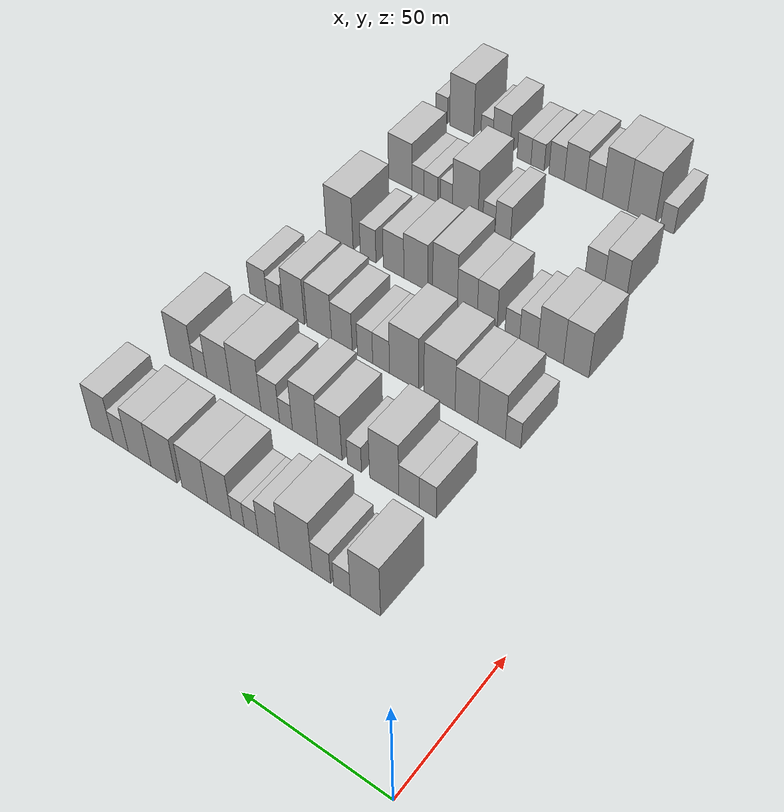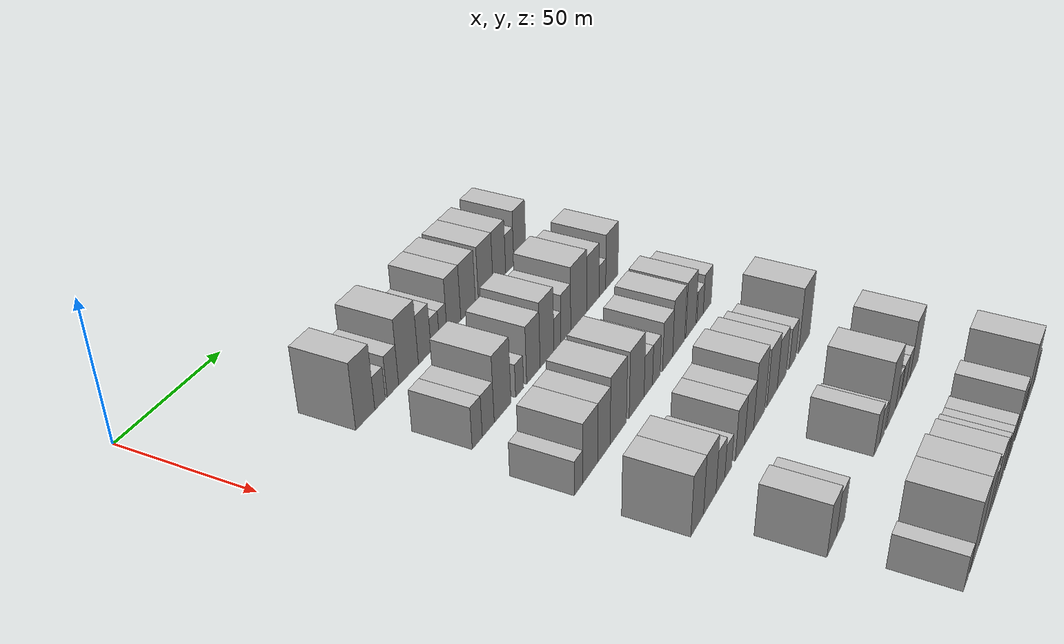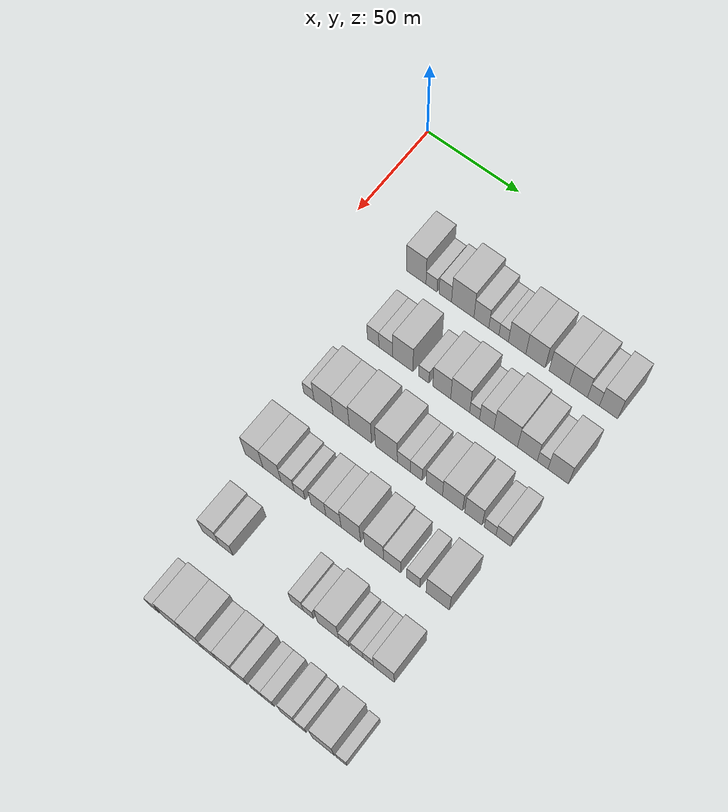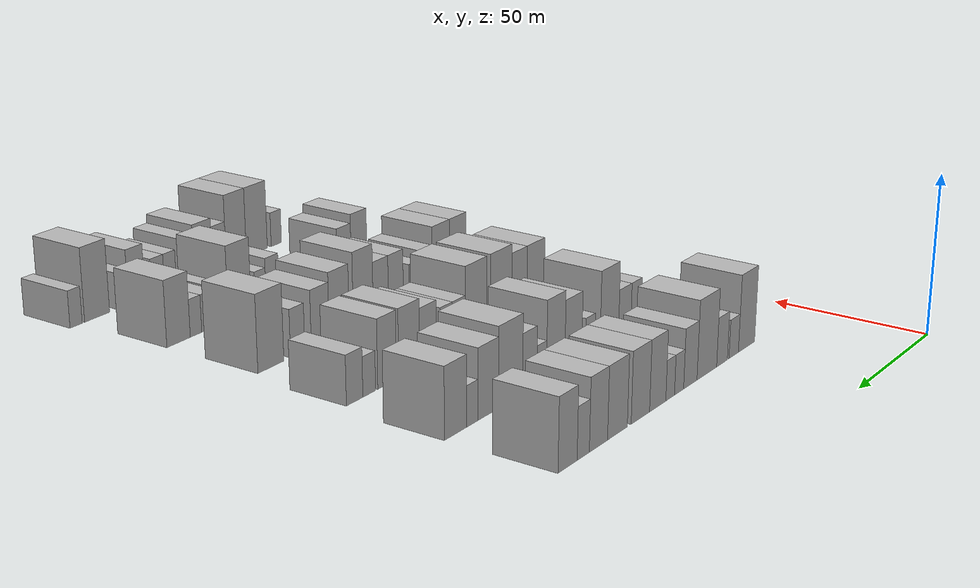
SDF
<sdf version="1.6">
 <world name="default">
  <model name="building_68">
   <static>1</static>
   <pose>50.0000 39.7448 0 0.000000 0.000000 0.000000</pose>
   <link name="link">
    <pose>0 0 12.00 0 0 0</pose>
    <collision name="collision"><geometry><box><size>20.0000 10.4469 24.0000</size></box></geometry></collision>
    <visual name="visual">
     <cast_shadows>0</cast_shadows>
     <geometry><box><size>20.0000 10.4469 24.0000</size></box></geometry>
     <material>
      <script>
       <uri>model://HANNAS_wall/materials/scripts</uri>
       <uri>model://HANNAS_wall/materials/textures</uri>
       <name>vrc/HANNAS_wall</name>
      </script>
     </material>
    </visual>
   </link>
  </model>
  <model name="building_69">
   <static>1</static>
   <pose>50.0000 47.9323 0 0.000000 0.000000 0.000000</pose>
   <link name="link">
    <pose>0 0 6.00 0 0 0</pose>
    <collision name="collision"><geometry><box><size>20.0000 5.9281 12.0000</size></box></geometry></collision>
    <visual name="visual">
     <cast_shadows>0</cast_shadows>
     <geometry><box><size>20.0000 5.9281 12.0000</size></box></geometry>
     <material>
      <script>
       <uri>model://HANNAS_wall/materials/scripts</uri>
       <uri>model://HANNAS_wall/materials/textures</uri>
       <name>vrc/HANNAS_wall</name>
      </script>
     </material>
    </visual>
   </link>
  </model>
  <model name="building_70">
   <static>1</static>
   <pose>50.0000 55.2206 0 0.000000 0.000000 0.000000</pose>
   <link name="link">
    <pose>0 0 7.50 0 0 0</pose>
    <collision name="collision"><geometry><box><size>20.0000 6.6485 15.0000</size></box></geometry></collision>
    <visual name="visual">
     <cast_shadows>0</cast_shadows>
     <geometry><box><size>20.0000 6.6485 15.0000</size></box></geometry>
     <material>
      <script>
       <uri>model://HANNAS_wall/materials/scripts</uri>
       <uri>model://HANNAS_wall/materials/textures</uri>
       <name>vrc/HANNAS_wall</name>
      </script>
     </material>
    </visual>
   </link>
  </model>
  <model name="building_71">
   <static>1</static>
   <pose>50.0000 64.4575 0 0.000000 0.000000 0.000000</pose>
   <link name="link">
    <pose>0 0 12.00 0 0 0</pose>
    <collision name="collision"><geometry><box><size>20.0000 11.8253 24.0000</size></box></geometry></collision>
    <visual name="visual">
     <cast_shadows>0</cast_shadows>
     <geometry><box><size>20.0000 11.8253 24.0000</size></box></geometry>
     <material>
      <script>
       <uri>model://HANNAS_wall/materials/scripts</uri>
       <uri>model://HANNAS_wall/materials/textures</uri>
       <name>vrc/HANNAS_wall</name>
      </script>
     </material>
    </visual>
   </link>
  </model>
  <model name="building_72">
   <static>1</static>
   <pose>50.0000 74.2820 0 0.000000 0.000000 0.000000</pose>
   <link name="link">
    <pose>0 0 9.00 0 0 0</pose>
    <collision name="collision"><geometry><box><size>20.0000 7.8237 18.0000</size></box></geometry></collision>
    <visual name="visual">
     <cast_shadows>0</cast_shadows>
     <geometry><box><size>20.0000 7.8237 18.0000</size></box></geometry>
     <material>
      <script>
       <uri>model://HANNAS_wall/materials/scripts</uri>
       <uri>model://HANNAS_wall/materials/textures</uri>
       <name>vrc/HANNAS_wall</name>
      </script>
     </material>
    </visual>
   </link>
  </model>
  <model name="building_73">
   <static>1</static>
   <pose>50.0000 80.8153 0 0.000000 0.000000 0.000000</pose>
   <link name="link">
    <pose>0 0 6.00 0 0 0</pose>
    <collision name="collision"><geometry><box><size>20.0000 5.2429 12.0000</size></box></geometry></collision>
    <visual name="visual">
     <cast_shadows>0</cast_shadows>
     <geometry><box><size>20.0000 5.2429 12.0000</size></box></geometry>
     <material>
      <script>
       <uri>model://HANNAS_wall/materials/scripts</uri>
       <uri>model://HANNAS_wall/materials/textures</uri>
       <name>vrc/HANNAS_wall</name>
      </script>
     </material>
    </visual>
   </link>
  </model>
  <model name="building_74">
   <static>1</static>
   <pose>50.0000 85.8954 0 0.000000 0.000000 0.000000</pose>
   <link name="link">
    <pose>0 0 6.00 0 0 0</pose>
    <collision name="collision"><geometry><box><size>20.0000 4.9174 12.0000</size></box></geometry></collision>
    <visual name="visual">
     <cast_shadows>0</cast_shadows>
     <geometry><box><size>20.0000 4.9174 12.0000</size></box></geometry>
     <material>
      <script>
       <uri>model://HANNAS_wall/materials/scripts</uri>
       <uri>model://HANNAS_wall/materials/textures</uri>
       <name>vrc/HANNAS_wall</name>
      </script>
     </material>
    </visual>
   </link>
  </model>
  <model name="building_75">
   <static>1</static>
   <pose>50.0000 92.8578 0 0.000000 0.000000 0.000000</pose>
   <link name="link">
    <pose>0 0 10.50 0 0 0</pose>
    <collision name="collision"><geometry><box><size>20.0000 9.0074 21.0000</size></box></geometry></collision>
    <visual name="visual">
     <cast_shadows>0</cast_shadows>
     <geometry><box><size>20.0000 9.0074 21.0000</size></box></geometry>
     <material>
      <script>
       <uri>model://HANNAS_wall/materials/scripts</uri>
       <uri>model://HANNAS_wall/materials/textures</uri>
       <name>vrc/HANNAS_wall</name>
      </script>
     </material>
    </visual>
   </link>
  </model>
  <model name="building_76">
   <static>1</static>
   <pose>50.0000 102.3251 0 0.000000 0.000000 0.000000</pose>
   <link name="link">
    <pose>0 0 10.50 0 0 0</pose>
    <collision name="collision"><geometry><box><size>20.0000 9.9271 21.0000</size></box></geometry></collision>
    <visual name="visual">
     <cast_shadows>0</cast_shadows>
     <geometry><box><size>20.0000 9.9271 21.0000</size></box></geometry>
     <material>
      <script>
       <uri>model://HANNAS_wall/materials/scripts</uri>
       <uri>model://HANNAS_wall/materials/textures</uri>
       <name>vrc/HANNAS_wall</name>
      </script>
     </material>
    </visual>
   </link>
  </model>
  <model name="building_77">
   <static>1</static>
   <pose>50.0000 114.4190 0 0.000000 0.000000 0.000000</pose>
   <link name="link">
    <pose>0 0 10.50 0 0 0</pose>
    <collision name="collision"><geometry><box><size>20.0000 10.2606 21.0000</size></box></geometry></collision>
    <visual name="visual">
     <cast_shadows>0</cast_shadows>
     <geometry><box><size>20.0000 10.2606 21.0000</size></box></geometry>
     <material>
      <script>
       <uri>model://HANNAS_wall/materials/scripts</uri>
       <uri>model://HANNAS_wall/materials/textures</uri>
       <name>vrc/HANNAS_wall</name>
      </script>
     </material>
    </visual>
   </link>
  </model>
  <model name="building_78">
   <static>1</static>
   <pose>50.0000 124.1277 0 0.000000 0.000000 0.000000</pose>
   <link name="link">
    <pose>0 0 10.50 0 0 0</pose>
    <collision name="collision"><geometry><box><size>20.0000 9.1568 21.0000</size></box></geometry></collision>
    <visual name="visual">
     <cast_shadows>0</cast_shadows>
     <geometry><box><size>20.0000 9.1568 21.0000</size></box></geometry>
     <material>
      <script>
       <uri>model://HANNAS_wall/materials/scripts</uri>
       <uri>model://HANNAS_wall/materials/textures</uri>
       <name>vrc/HANNAS_wall</name>
      </script>
     </material>
    </visual>
   </link>
  </model>
  <model name="building_79">
   <static>1</static>
   <pose>50.0000 131.7071 0 0.000000 0.000000 0.000000</pose>
   <link name="link">
    <pose>0 0 7.50 0 0 0</pose>
    <collision name="collision"><geometry><box><size>20.0000 6.0020 15.0000</size></box></geometry></collision>
    <visual name="visual">
     <cast_shadows>0</cast_shadows>
     <geometry><box><size>20.0000 6.0020 15.0000</size></box></geometry>
     <material>
      <script>
       <uri>model://HANNAS_wall/materials/scripts</uri>
       <uri>model://HANNAS_wall/materials/textures</uri>
       <name>vrc/HANNAS_wall</name>
      </script>
     </material>
    </visual>
   </link>
  </model>
  <model name="building_80">
   <static>1</static>
   <pose>50.0000 139.2827 0 0.000000 0.000000 0.000000</pose>
   <link name="link">
    <pose>0 0 10.50 0 0 0</pose>
    <collision name="collision"><geometry><box><size>20.0000 9.1493 21.0000</size></box></geometry></collision>
    <visual name="visual">
     <cast_shadows>0</cast_shadows>
     <geometry><box><size>20.0000 9.1493 21.0000</size></box></geometry>
     <material>
      <script>
       <uri>model://HANNAS_wall/materials/scripts</uri>
       <uri>model://HANNAS_wall/materials/textures</uri>
       <name>vrc/HANNAS_wall</name>
      </script>
     </material>
    </visual>
   </link>
  </model>
  <model name="building_197">
   <static>1</static>
   <pose>85.0000 44.0914 0 0.000000 0.000000 0.000000</pose>
   <link name="link">
    <pose>0 0 7.50 0 0 0</pose>
    <collision name="collision"><geometry><box><size>20.0000 6.0835 15.0000</size></box></geometry></collision>
    <visual name="visual">
     <cast_shadows>0</cast_shadows>
     <geometry><box><size>20.0000 6.0835 15.0000</size></box></geometry>
     <material>
      <script>
       <uri>model://HANNAS_wall/materials/scripts</uri>
       <uri>model://HANNAS_wall/materials/textures</uri>
       <name>vrc/HANNAS_wall</name>
      </script>
     </material>
    </visual>
   </link>
  </model>
  <model name="building_198">
   <static>1</static>
   <pose>85.0000 50.7924 0 0.000000 0.000000 0.000000</pose>
   <link name="link">
    <pose>0 0 7.50 0 0 0</pose>
    <collision name="collision"><geometry><box><size>20.0000 7.3185 15.0000</size></box></geometry></collision>
    <visual name="visual">
     <cast_shadows>0</cast_shadows>
     <geometry><box><size>20.0000 7.3185 15.0000</size></box></geometry>
     <material>
      <script>
       <uri>model://HANNAS_wall/materials/scripts</uri>
       <uri>model://HANNAS_wall/materials/textures</uri>
       <name>vrc/HANNAS_wall</name>
      </script>
     </material>
    </visual>
   </link>
  </model>
  <model name="building_199">
   <static>1</static>
   <pose>85.0000 59.7798 0 0.000000 0.000000 0.000000</pose>
   <link name="link">
    <pose>0 0 12.00 0 0 0</pose>
    <collision name="collision"><geometry><box><size>20.0000 10.6563 24.0000</size></box></geometry></collision>
    <visual name="visual">
     <cast_shadows>0</cast_shadows>
     <geometry><box><size>20.0000 10.6563 24.0000</size></box></geometry>
     <material>
      <script>
       <uri>model://HANNAS_wall/materials/scripts</uri>
       <uri>model://HANNAS_wall/materials/textures</uri>
       <name>vrc/HANNAS_wall</name>
      </script>
     </material>
    </visual>
   </link>
  </model>
  <model name="building_200">
   <static>1</static>
   <pose>85.0000 70.7654 0 0.000000 0.000000 0.000000</pose>
   <link name="link">
    <pose>0 0 6.00 0 0 0</pose>
    <collision name="collision"><geometry><box><size>20.0000 5.3149 12.0000</size></box></geometry></collision>
    <visual name="visual">
     <cast_shadows>0</cast_shadows>
     <geometry><box><size>20.0000 5.3149 12.0000</size></box></geometry>
     <material>
      <script>
       <uri>model://HANNAS_wall/materials/scripts</uri>
       <uri>model://HANNAS_wall/materials/textures</uri>
       <name>vrc/HANNAS_wall</name>
      </script>
     </material>
    </visual>
   </link>
  </model>
  <model name="building_201">
   <static>1</static>
   <pose>85.0000 80.0389 0 0.000000 0.000000 0.000000</pose>
   <link name="link">
    <pose>0 0 10.50 0 0 0</pose>
    <collision name="collision"><geometry><box><size>20.0000 9.2322 21.0000</size></box></geometry></collision>
    <visual name="visual">
     <cast_shadows>0</cast_shadows>
     <geometry><box><size>20.0000 9.2322 21.0000</size></box></geometry>
     <material>
      <script>
       <uri>model://HANNAS_wall/materials/scripts</uri>
       <uri>model://HANNAS_wall/materials/textures</uri>
       <name>vrc/HANNAS_wall</name>
      </script>
     </material>
    </visual>
   </link>
  </model>
  <model name="building_202">
   <static>1</static>
   <pose>85.0000 89.5203 0 0.000000 0.000000 0.000000</pose>
   <link name="link">
    <pose>0 0 12.00 0 0 0</pose>
    <collision name="collision"><geometry><box><size>20.0000 9.7306 24.0000</size></box></geometry></collision>
    <visual name="visual">
     <cast_shadows>0</cast_shadows>
     <geometry><box><size>20.0000 9.7306 24.0000</size></box></geometry>
     <material>
      <script>
       <uri>model://HANNAS_wall/materials/scripts</uri>
       <uri>model://HANNAS_wall/materials/textures</uri>
       <name>vrc/HANNAS_wall</name>
      </script>
     </material>
    </visual>
   </link>
  </model>
  <model name="building_203">
   <static>1</static>
   <pose>85.0000 96.9001 0 0.000000 0.000000 0.000000</pose>
   <link name="link">
    <pose>0 0 6.00 0 0 0</pose>
    <collision name="collision"><geometry><box><size>20.0000 5.0289 12.0000</size></box></geometry></collision>
    <visual name="visual">
     <cast_shadows>0</cast_shadows>
     <geometry><box><size>20.0000 5.0289 12.0000</size></box></geometry>
     <material>
      <script>
       <uri>model://HANNAS_wall/materials/scripts</uri>
       <uri>model://HANNAS_wall/materials/textures</uri>
       <name>vrc/HANNAS_wall</name>
      </script>
     </material>
    </visual>
   </link>
  </model>
  <model name="building_204">
   <static>1</static>
   <pose>85.0000 103.0547 0 0.000000 0.000000 0.000000</pose>
   <link name="link">
    <pose>0 0 9.00 0 0 0</pose>
    <collision name="collision"><geometry><box><size>20.0000 7.2803 18.0000</size></box></geometry></collision>
    <visual name="visual">
     <cast_shadows>0</cast_shadows>
     <geometry><box><size>20.0000 7.2803 18.0000</size></box></geometry>
     <material>
      <script>
       <uri>model://HANNAS_wall/materials/scripts</uri>
       <uri>model://HANNAS_wall/materials/textures</uri>
       <name>vrc/HANNAS_wall</name>
      </script>
     </material>
    </visual>
   </link>
  </model>
  <model name="building_205">
   <static>1</static>
   <pose>85.0000 112.6889 0 0.000000 0.000000 0.000000</pose>
   <link name="link">
    <pose>0 0 12.00 0 0 0</pose>
    <collision name="collision"><geometry><box><size>20.0000 11.9880 24.0000</size></box></geometry></collision>
    <visual name="visual">
     <cast_shadows>0</cast_shadows>
     <geometry><box><size>20.0000 11.9880 24.0000</size></box></geometry>
     <material>
      <script>
       <uri>model://HANNAS_wall/materials/scripts</uri>
       <uri>model://HANNAS_wall/materials/textures</uri>
       <name>vrc/HANNAS_wall</name>
      </script>
     </material>
    </visual>
   </link>
  </model>
  <model name="building_206">
   <static>1</static>
   <pose>85.0000 123.6035 0 0.000000 0.000000 0.000000</pose>
   <link name="link">
    <pose>0 0 10.50 0 0 0</pose>
    <collision name="collision"><geometry><box><size>20.0000 9.8411 21.0000</size></box></geometry></collision>
    <visual name="visual">
     <cast_shadows>0</cast_shadows>
     <geometry><box><size>20.0000 9.8411 21.0000</size></box></geometry>
     <material>
      <script>
       <uri>model://HANNAS_wall/materials/scripts</uri>
       <uri>model://HANNAS_wall/materials/textures</uri>
       <name>vrc/HANNAS_wall</name>
      </script>
     </material>
    </visual>
   </link>
  </model>
  <model name="building_207">
   <static>1</static>
   <pose>85.0000 131.2155 0 0.000000 0.000000 0.000000</pose>
   <link name="link">
    <pose>0 0 6.00 0 0 0</pose>
    <collision name="collision"><geometry><box><size>20.0000 5.3829 12.0000</size></box></geometry></collision>
    <visual name="visual">
     <cast_shadows>0</cast_shadows>
     <geometry><box><size>20.0000 5.3829 12.0000</size></box></geometry>
     <material>
      <script>
       <uri>model://HANNAS_wall/materials/scripts</uri>
       <uri>model://HANNAS_wall/materials/textures</uri>
       <name>vrc/HANNAS_wall</name>
      </script>
     </material>
    </visual>
   </link>
  </model>
  <model name="building_208">
   <static>1</static>
   <pose>85.0000 138.9702 0 0.000000 0.000000 0.000000</pose>
   <link name="link">
    <pose>0 0 10.50 0 0 0</pose>
    <collision name="collision"><geometry><box><size>20.0000 10.1266 21.0000</size></box></geometry></collision>
    <visual name="visual">
     <cast_shadows>0</cast_shadows>
     <geometry><box><size>20.0000 10.1266 21.0000</size></box></geometry>
     <material>
      <script>
       <uri>model://HANNAS_wall/materials/scripts</uri>
       <uri>model://HANNAS_wall/materials/textures</uri>
       <name>vrc/HANNAS_wall</name>
      </script>
     </material>
    </visual>
   </link>
  </model>
  <model name="building_324">
   <static>1</static>
   <pose>120.0000 38.0792 0 0.000000 0.000000 0.000000</pose>
   <link name="link">
    <pose>0 0 6.00 0 0 0</pose>
    <collision name="collision"><geometry><box><size>20.0000 5.5073 12.0000</size></box></geometry></collision>
    <visual name="visual">
     <cast_shadows>0</cast_shadows>
     <geometry><box><size>20.0000 5.5073 12.0000</size></box></geometry>
     <material>
      <script>
       <uri>model://HANNAS_wall/materials/scripts</uri>
       <uri>model://HANNAS_wall/materials/textures</uri>
       <name>vrc/HANNAS_wall</name>
      </script>
     </material>
    </visual>
   </link>
  </model>
  <model name="building_325">
   <static>1</static>
   <pose>120.0000 45.8246 0 0.000000 0.000000 0.000000</pose>
   <link name="link">
    <pose>0 0 10.50 0 0 0</pose>
    <collision name="collision"><geometry><box><size>20.0000 9.9835 21.0000</size></box></geometry></collision>
    <visual name="visual">
     <cast_shadows>0</cast_shadows>
     <geometry><box><size>20.0000 9.9835 21.0000</size></box></geometry>
     <material>
      <script>
       <uri>model://HANNAS_wall/materials/scripts</uri>
       <uri>model://HANNAS_wall/materials/textures</uri>
       <name>vrc/HANNAS_wall</name>
      </script>
     </material>
    </visual>
   </link>
  </model>
  <model name="building_326">
   <static>1</static>
   <pose>120.0000 55.0758 0 0.000000 0.000000 0.000000</pose>
   <link name="link">
    <pose>0 0 10.50 0 0 0</pose>
    <collision name="collision"><geometry><box><size>20.0000 8.5189 21.0000</size></box></geometry></collision>
    <visual name="visual">
     <cast_shadows>0</cast_shadows>
     <geometry><box><size>20.0000 8.5189 21.0000</size></box></geometry>
     <material>
      <script>
       <uri>model://HANNAS_wall/materials/scripts</uri>
       <uri>model://HANNAS_wall/materials/textures</uri>
       <name>vrc/HANNAS_wall</name>
      </script>
     </material>
    </visual>
   </link>
  </model>
  <model name="building_327">
   <static>1</static>
   <pose>120.0000 65.1526 0 0.000000 0.000000 0.000000</pose>
   <link name="link">
    <pose>0 0 12.00 0 0 0</pose>
    <collision name="collision"><geometry><box><size>20.0000 11.6348 24.0000</size></box></geometry></collision>
    <visual name="visual">
     <cast_shadows>0</cast_shadows>
     <geometry><box><size>20.0000 11.6348 24.0000</size></box></geometry>
     <material>
      <script>
       <uri>model://HANNAS_wall/materials/scripts</uri>
       <uri>model://HANNAS_wall/materials/textures</uri>
       <name>vrc/HANNAS_wall</name>
      </script>
     </material>
    </visual>
   </link>
  </model>
  <model name="building_328">
   <static>1</static>
   <pose>120.0000 78.5811 0 0.000000 0.000000 0.000000</pose>
   <link name="link">
    <pose>0 0 12.00 0 0 0</pose>
    <collision name="collision"><geometry><box><size>20.0000 11.2222 24.0000</size></box></geometry></collision>
    <visual name="visual">
     <cast_shadows>0</cast_shadows>
     <geometry><box><size>20.0000 11.2222 24.0000</size></box></geometry>
     <material>
      <script>
       <uri>model://HANNAS_wall/materials/scripts</uri>
       <uri>model://HANNAS_wall/materials/textures</uri>
       <name>vrc/HANNAS_wall</name>
      </script>
     </material>
    </visual>
   </link>
  </model>
  <model name="building_329">
   <static>1</static>
   <pose>120.0000 87.4728 0 0.000000 0.000000 0.000000</pose>
   <link name="link">
    <pose>0 0 7.50 0 0 0</pose>
    <collision name="collision"><geometry><box><size>20.0000 6.5613 15.0000</size></box></geometry></collision>
    <visual name="visual">
     <cast_shadows>0</cast_shadows>
     <geometry><box><size>20.0000 6.5613 15.0000</size></box></geometry>
     <material>
      <script>
       <uri>model://HANNAS_wall/materials/scripts</uri>
       <uri>model://HANNAS_wall/materials/textures</uri>
       <name>vrc/HANNAS_wall</name>
      </script>
     </material>
    </visual>
   </link>
  </model>
  <model name="building_330">
   <static>1</static>
   <pose>120.0000 93.7752 0 0.000000 0.000000 0.000000</pose>
   <link name="link">
    <pose>0 0 7.50 0 0 0</pose>
    <collision name="collision"><geometry><box><size>20.0000 6.0434 15.0000</size></box></geometry></collision>
    <visual name="visual">
     <cast_shadows>0</cast_shadows>
     <geometry><box><size>20.0000 6.0434 15.0000</size></box></geometry>
     <material>
      <script>
       <uri>model://HANNAS_wall/materials/scripts</uri>
       <uri>model://HANNAS_wall/materials/textures</uri>
       <name>vrc/HANNAS_wall</name>
      </script>
     </material>
    </visual>
   </link>
  </model>
  <model name="building_331">
   <static>1</static>
   <pose>120.0000 102.9419 0 0.000000 0.000000 0.000000</pose>
   <link name="link">
    <pose>0 0 9.00 0 0 0</pose>
    <collision name="collision"><geometry><box><size>20.0000 8.2899 18.0000</size></box></geometry></collision>
    <visual name="visual">
     <cast_shadows>0</cast_shadows>
     <geometry><box><size>20.0000 8.2899 18.0000</size></box></geometry>
     <material>
      <script>
       <uri>model://HANNAS_wall/materials/scripts</uri>
       <uri>model://HANNAS_wall/materials/textures</uri>
       <name>vrc/HANNAS_wall</name>
      </script>
     </material>
    </visual>
   </link>
  </model>
  <model name="building_332">
   <static>1</static>
   <pose>120.0000 112.1088 0 0.000000 0.000000 0.000000</pose>
   <link name="link">
    <pose>0 0 10.50 0 0 0</pose>
    <collision name="collision"><geometry><box><size>20.0000 10.0439 21.0000</size></box></geometry></collision>
    <visual name="visual">
     <cast_shadows>0</cast_shadows>
     <geometry><box><size>20.0000 10.0439 21.0000</size></box></geometry>
     <material>
      <script>
       <uri>model://HANNAS_wall/materials/scripts</uri>
       <uri>model://HANNAS_wall/materials/textures</uri>
       <name>vrc/HANNAS_wall</name>
      </script>
     </material>
    </visual>
   </link>
  </model>
  <model name="building_333">
   <static>1</static>
   <pose>120.0000 122.5008 0 0.000000 0.000000 0.000000</pose>
   <link name="link">
    <pose>0 0 10.50 0 0 0</pose>
    <collision name="collision"><geometry><box><size>20.0000 8.7400 21.0000</size></box></geometry></collision>
    <visual name="visual">
     <cast_shadows>0</cast_shadows>
     <geometry><box><size>20.0000 8.7400 21.0000</size></box></geometry>
     <material>
      <script>
       <uri>model://HANNAS_wall/materials/scripts</uri>
       <uri>model://HANNAS_wall/materials/textures</uri>
       <name>vrc/HANNAS_wall</name>
      </script>
     </material>
    </visual>
   </link>
  </model>
  <model name="building_334">
   <static>1</static>
   <pose>120.0000 130.7545 0 0.000000 0.000000 0.000000</pose>
   <link name="link">
    <pose>0 0 6.00 0 0 0</pose>
    <collision name="collision"><geometry><box><size>20.0000 5.7675 12.0000</size></box></geometry></collision>
    <visual name="visual">
     <cast_shadows>0</cast_shadows>
     <geometry><box><size>20.0000 5.7675 12.0000</size></box></geometry>
     <material>
      <script>
       <uri>model://HANNAS_wall/materials/scripts</uri>
       <uri>model://HANNAS_wall/materials/textures</uri>
       <name>vrc/HANNAS_wall</name>
      </script>
     </material>
    </visual>
   </link>
  </model>
  <model name="building_335">
   <static>1</static>
   <pose>120.0000 137.2991 0 0.000000 0.000000 0.000000</pose>
   <link name="link">
    <pose>0 0 7.50 0 0 0</pose>
    <collision name="collision"><geometry><box><size>20.0000 7.3216 15.0000</size></box></geometry></collision>
    <visual name="visual">
     <cast_shadows>0</cast_shadows>
     <geometry><box><size>20.0000 7.3216 15.0000</size></box></geometry>
     <material>
      <script>
       <uri>model://HANNAS_wall/materials/scripts</uri>
       <uri>model://HANNAS_wall/materials/textures</uri>
       <name>vrc/HANNAS_wall</name>
      </script>
     </material>
    </visual>
   </link>
  </model>
  <model name="building_454">
   <static>1</static>
   <pose>155.0000 38.0548 0 0.000000 0.000000 0.000000</pose>
   <link name="link">
    <pose>0 0 10.50 0 0 0</pose>
    <collision name="collision"><geometry><box><size>20.0000 9.3553 21.0000</size></box></geometry></collision>
    <visual name="visual">
     <cast_shadows>0</cast_shadows>
     <geometry><box><size>20.0000 9.3553 21.0000</size></box></geometry>
     <material>
      <script>
       <uri>model://HANNAS_wall/materials/scripts</uri>
       <uri>model://HANNAS_wall/materials/textures</uri>
       <name>vrc/HANNAS_wall</name>
      </script>
     </material>
    </visual>
   </link>
  </model>
  <model name="building_455">
   <static>1</static>
   <pose>155.0000 47.4973 0 0.000000 0.000000 0.000000</pose>
   <link name="link">
    <pose>0 0 10.50 0 0 0</pose>
    <collision name="collision"><geometry><box><size>20.0000 9.5299 21.0000</size></box></geometry></collision>
    <visual name="visual">
     <cast_shadows>0</cast_shadows>
     <geometry><box><size>20.0000 9.5299 21.0000</size></box></geometry>
     <material>
      <script>
       <uri>model://HANNAS_wall/materials/scripts</uri>
       <uri>model://HANNAS_wall/materials/textures</uri>
       <name>vrc/HANNAS_wall</name>
      </script>
     </material>
    </visual>
   </link>
  </model>
  <model name="building_456">
   <static>1</static>
   <pose>155.0000 55.7094 0 0.000000 0.000000 0.000000</pose>
   <link name="link">
    <pose>0 0 7.50 0 0 0</pose>
    <collision name="collision"><geometry><box><size>20.0000 6.8942 15.0000</size></box></geometry></collision>
    <visual name="visual">
     <cast_shadows>0</cast_shadows>
     <geometry><box><size>20.0000 6.8942 15.0000</size></box></geometry>
     <material>
      <script>
       <uri>model://HANNAS_wall/materials/scripts</uri>
       <uri>model://HANNAS_wall/materials/textures</uri>
       <name>vrc/HANNAS_wall</name>
      </script>
     </material>
    </visual>
   </link>
  </model>
  <model name="building_457">
   <static>1</static>
   <pose>155.0000 61.9634 0 0.000000 0.000000 0.000000</pose>
   <link name="link">
    <pose>0 0 6.00 0 0 0</pose>
    <collision name="collision"><geometry><box><size>20.0000 5.6138 12.0000</size></box></geometry></collision>
    <visual name="visual">
     <cast_shadows>0</cast_shadows>
     <geometry><box><size>20.0000 5.6138 12.0000</size></box></geometry>
     <material>
      <script>
       <uri>model://HANNAS_wall/materials/scripts</uri>
       <uri>model://HANNAS_wall/materials/textures</uri>
       <name>vrc/HANNAS_wall</name>
      </script>
     </material>
    </visual>
   </link>
  </model>
  <model name="building_458">
   <static>1</static>
   <pose>155.0000 71.6405 0 0.000000 0.000000 0.000000</pose>
   <link name="link">
    <pose>0 0 9.00 0 0 0</pose>
    <collision name="collision"><geometry><box><size>20.0000 7.7405 18.0000</size></box></geometry></collision>
    <visual name="visual">
     <cast_shadows>0</cast_shadows>
     <geometry><box><size>20.0000 7.7405 18.0000</size></box></geometry>
     <material>
      <script>
       <uri>model://HANNAS_wall/materials/scripts</uri>
       <uri>model://HANNAS_wall/materials/textures</uri>
       <name>vrc/HANNAS_wall</name>
      </script>
     </material>
    </visual>
   </link>
  </model>
  <model name="building_459">
   <static>1</static>
   <pose>155.0000 79.3829 0 0.000000 0.000000 0.000000</pose>
   <link name="link">
    <pose>0 0 9.00 0 0 0</pose>
    <collision name="collision"><geometry><box><size>20.0000 7.7443 18.0000</size></box></geometry></collision>
    <visual name="visual">
     <cast_shadows>0</cast_shadows>
     <geometry><box><size>20.0000 7.7443 18.0000</size></box></geometry>
     <material>
      <script>
       <uri>model://HANNAS_wall/materials/scripts</uri>
       <uri>model://HANNAS_wall/materials/textures</uri>
       <name>vrc/HANNAS_wall</name>
      </script>
     </material>
    </visual>
   </link>
  </model>
  <model name="building_460">
   <static>1</static>
   <pose>155.0000 88.1899 0 0.000000 0.000000 0.000000</pose>
   <link name="link">
    <pose>0 0 12.00 0 0 0</pose>
    <collision name="collision"><geometry><box><size>20.0000 9.8698 24.0000</size></box></geometry></collision>
    <visual name="visual">
     <cast_shadows>0</cast_shadows>
     <geometry><box><size>20.0000 9.8698 24.0000</size></box></geometry>
     <material>
      <script>
       <uri>model://HANNAS_wall/materials/scripts</uri>
       <uri>model://HANNAS_wall/materials/textures</uri>
       <name>vrc/HANNAS_wall</name>
      </script>
     </material>
    </visual>
   </link>
  </model>
  <model name="building_461">
   <static>1</static>
   <pose>155.0000 99.9154 0 0.000000 0.000000 0.000000</pose>
   <link name="link">
    <pose>0 0 10.50 0 0 0</pose>
    <collision name="collision"><geometry><box><size>20.0000 9.5810 21.0000</size></box></geometry></collision>
    <visual name="visual">
     <cast_shadows>0</cast_shadows>
     <geometry><box><size>20.0000 9.5810 21.0000</size></box></geometry>
     <material>
      <script>
       <uri>model://HANNAS_wall/materials/scripts</uri>
       <uri>model://HANNAS_wall/materials/textures</uri>
       <name>vrc/HANNAS_wall</name>
      </script>
     </material>
    </visual>
   </link>
  </model>
  <model name="building_462">
   <static>1</static>
   <pose>155.0000 108.9392 0 0.000000 0.000000 0.000000</pose>
   <link name="link">
    <pose>0 0 9.00 0 0 0</pose>
    <collision name="collision"><geometry><box><size>20.0000 8.4666 18.0000</size></box></geometry></collision>
    <visual name="visual">
     <cast_shadows>0</cast_shadows>
     <geometry><box><size>20.0000 8.4666 18.0000</size></box></geometry>
     <material>
      <script>
       <uri>model://HANNAS_wall/materials/scripts</uri>
       <uri>model://HANNAS_wall/materials/textures</uri>
       <name>vrc/HANNAS_wall</name>
      </script>
     </material>
    </visual>
   </link>
  </model>
  <model name="building_463">
   <static>1</static>
   <pose>155.0000 119.4367 0 0.000000 0.000000 0.000000</pose>
   <link name="link">
    <pose>0 0 7.50 0 0 0</pose>
    <collision name="collision"><geometry><box><size>20.0000 6.5285 15.0000</size></box></geometry></collision>
    <visual name="visual">
     <cast_shadows>0</cast_shadows>
     <geometry><box><size>20.0000 6.5285 15.0000</size></box></geometry>
     <material>
      <script>
       <uri>model://HANNAS_wall/materials/scripts</uri>
       <uri>model://HANNAS_wall/materials/textures</uri>
       <name>vrc/HANNAS_wall</name>
      </script>
     </material>
    </visual>
   </link>
  </model>
  <model name="building_464">
   <static>1</static>
   <pose>155.0000 131.4168 0 0.000000 0.000000 0.000000</pose>
   <link name="link">
    <pose>0 0 12.00 0 0 0</pose>
    <collision name="collision"><geometry><box><size>20.0000 11.4317 24.0000</size></box></geometry></collision>
    <visual name="visual">
     <cast_shadows>0</cast_shadows>
     <geometry><box><size>20.0000 11.4317 24.0000</size></box></geometry>
     <material>
      <script>
       <uri>model://HANNAS_wall/materials/scripts</uri>
       <uri>model://HANNAS_wall/materials/textures</uri>
       <name>vrc/HANNAS_wall</name>
      </script>
     </material>
    </visual>
   </link>
  </model>
  <model name="building_573">
   <static>1</static>
   <pose>190.0000 45.2889 0 0.000000 0.000000 0.000000</pose>
   <link name="link">
    <pose>0 0 9.00 0 0 0</pose>
    <collision name="collision"><geometry><box><size>20.0000 8.5119 18.0000</size></box></geometry></collision>
    <visual name="visual">
     <cast_shadows>0</cast_shadows>
     <geometry><box><size>20.0000 8.5119 18.0000</size></box></geometry>
     <material>
      <script>
       <uri>model://HANNAS_wall/materials/scripts</uri>
       <uri>model://HANNAS_wall/materials/textures</uri>
       <name>vrc/HANNAS_wall</name>
      </script>
     </material>
    </visual>
   </link>
  </model>
  <model name="building_574">
   <static>1</static>
   <pose>190.0000 53.2647 0 0.000000 0.000000 0.000000</pose>
   <link name="link">
    <pose>0 0 7.50 0 0 0</pose>
    <collision name="collision"><geometry><box><size>20.0000 7.4396 15.0000</size></box></geometry></collision>
    <visual name="visual">
     <cast_shadows>0</cast_shadows>
     <geometry><box><size>20.0000 7.4396 15.0000</size></box></geometry>
     <material>
      <script>
       <uri>model://HANNAS_wall/materials/scripts</uri>
       <uri>model://HANNAS_wall/materials/textures</uri>
       <name>vrc/HANNAS_wall</name>
      </script>
     </material>
    </visual>
   </link>
  </model>
  <model name="building_575">
   <static>1</static>
   <pose>190.0000 89.3772 0 0.000000 0.000000 0.000000</pose>
   <link name="link">
    <pose>0 0 7.50 0 0 0</pose>
    <collision name="collision"><geometry><box><size>20.0000 6.2618 15.0000</size></box></geometry></collision>
    <visual name="visual">
     <cast_shadows>0</cast_shadows>
     <geometry><box><size>20.0000 6.2618 15.0000</size></box></geometry>
     <material>
      <script>
       <uri>model://HANNAS_wall/materials/scripts</uri>
       <uri>model://HANNAS_wall/materials/textures</uri>
       <name>vrc/HANNAS_wall</name>
      </script>
     </material>
    </visual>
   </link>
  </model>
  <model name="building_576">
   <static>1</static>
   <pose>190.0000 95.0574 0 0.000000 0.000000 0.000000</pose>
   <link name="link">
    <pose>0 0 6.00 0 0 0</pose>
    <collision name="collision"><geometry><box><size>20.0000 5.0987 12.0000</size></box></geometry></collision>
    <visual name="visual">
     <cast_shadows>0</cast_shadows>
     <geometry><box><size>20.0000 5.0987 12.0000</size></box></geometry>
     <material>
      <script>
       <uri>model://HANNAS_wall/materials/scripts</uri>
       <uri>model://HANNAS_wall/materials/textures</uri>
       <name>vrc/HANNAS_wall</name>
      </script>
     </material>
    </visual>
   </link>
  </model>
  <model name="building_577">
   <static>1</static>
   <pose>190.0000 104.9108 0 0.000000 0.000000 0.000000</pose>
   <link name="link">
    <pose>0 0 12.00 0 0 0</pose>
    <collision name="collision"><geometry><box><size>20.0000 10.6080 24.0000</size></box></geometry></collision>
    <visual name="visual">
     <cast_shadows>0</cast_shadows>
     <geometry><box><size>20.0000 10.6080 24.0000</size></box></geometry>
     <material>
      <script>
       <uri>model://HANNAS_wall/materials/scripts</uri>
       <uri>model://HANNAS_wall/materials/textures</uri>
       <name>vrc/HANNAS_wall</name>
      </script>
     </material>
    </visual>
   </link>
  </model>
  <model name="building_578">
   <static>1</static>
   <pose>190.0000 112.7415 0 0.000000 0.000000 0.000000</pose>
   <link name="link">
    <pose>0 0 6.00 0 0 0</pose>
    <collision name="collision"><geometry><box><size>20.0000 5.0536 12.0000</size></box></geometry></collision>
    <visual name="visual">
     <cast_shadows>0</cast_shadows>
     <geometry><box><size>20.0000 5.0536 12.0000</size></box></geometry>
     <material>
      <script>
       <uri>model://HANNAS_wall/materials/scripts</uri>
       <uri>model://HANNAS_wall/materials/textures</uri>
       <name>vrc/HANNAS_wall</name>
      </script>
     </material>
    </visual>
   </link>
  </model>
  <model name="building_579">
   <static>1</static>
   <pose>190.0000 119.2360 0 0.000000 0.000000 0.000000</pose>
   <link name="link">
    <pose>0 0 6.00 0 0 0</pose>
    <collision name="collision"><geometry><box><size>20.0000 5.9353 12.0000</size></box></geometry></collision>
    <visual name="visual">
     <cast_shadows>0</cast_shadows>
     <geometry><box><size>20.0000 5.9353 12.0000</size></box></geometry>
     <material>
      <script>
       <uri>model://HANNAS_wall/materials/scripts</uri>
       <uri>model://HANNAS_wall/materials/textures</uri>
       <name>vrc/HANNAS_wall</name>
      </script>
     </material>
    </visual>
   </link>
  </model>
  <model name="building_580">
   <static>1</static>
   <pose>190.0000 124.7324 0 0.000000 0.000000 0.000000</pose>
   <link name="link">
    <pose>0 0 6.00 0 0 0</pose>
    <collision name="collision"><geometry><box><size>20.0000 5.0575 12.0000</size></box></geometry></collision>
    <visual name="visual">
     <cast_shadows>0</cast_shadows>
     <geometry><box><size>20.0000 5.0575 12.0000</size></box></geometry>
     <material>
      <script>
       <uri>model://HANNAS_wall/materials/scripts</uri>
       <uri>model://HANNAS_wall/materials/textures</uri>
       <name>vrc/HANNAS_wall</name>
      </script>
     </material>
    </visual>
   </link>
  </model>
  <model name="building_581">
   <static>1</static>
   <pose>190.0000 132.2980 0 0.000000 0.000000 0.000000</pose>
   <link name="link">
    <pose>0 0 10.50 0 0 0</pose>
    <collision name="collision"><geometry><box><size>20.0000 10.0737 21.0000</size></box></geometry></collision>
    <visual name="visual">
     <cast_shadows>0</cast_shadows>
     <geometry><box><size>20.0000 10.0737 21.0000</size></box></geometry>
     <material>
      <script>
       <uri>model://HANNAS_wall/materials/scripts</uri>
       <uri>model://HANNAS_wall/materials/textures</uri>
       <name>vrc/HANNAS_wall</name>
      </script>
     </material>
    </visual>
   </link>
  </model>
  <model name="building_700">
   <static>1</static>
   <pose>225.0000 46.3062 0 0.000000 0.000000 0.000000</pose>
   <link name="link">
    <pose>0 0 6.00 0 0 0</pose>
    <collision name="collision"><geometry><box><size>20.0000 5.4311 12.0000</size></box></geometry></collision>
    <visual name="visual">
     <cast_shadows>0</cast_shadows>
     <geometry><box><size>20.0000 5.4311 12.0000</size></box></geometry>
     <material>
      <script>
       <uri>model://HANNAS_wall/materials/scripts</uri>
       <uri>model://HANNAS_wall/materials/textures</uri>
       <name>vrc/HANNAS_wall</name>
      </script>
     </material>
    </visual>
   </link>
  </model>
  <model name="building_701">
   <static>1</static>
   <pose>225.0000 56.3890 0 0.000000 0.000000 0.000000</pose>
   <link name="link">
    <pose>0 0 12.00 0 0 0</pose>
    <collision name="collision"><geometry><box><size>20.0000 10.7346 24.0000</size></box></geometry></collision>
    <visual name="visual">
     <cast_shadows>0</cast_shadows>
     <geometry><box><size>20.0000 10.7346 24.0000</size></box></geometry>
     <material>
      <script>
       <uri>model://HANNAS_wall/materials/scripts</uri>
       <uri>model://HANNAS_wall/materials/textures</uri>
       <name>vrc/HANNAS_wall</name>
      </script>
     </material>
    </visual>
   </link>
  </model>
  <model name="building_702">
   <static>1</static>
   <pose>225.0000 66.7834 0 0.000000 0.000000 0.000000</pose>
   <link name="link">
    <pose>0 0 12.00 0 0 0</pose>
    <collision name="collision"><geometry><box><size>20.0000 10.0540 24.0000</size></box></geometry></collision>
    <visual name="visual">
     <cast_shadows>0</cast_shadows>
     <geometry><box><size>20.0000 10.0540 24.0000</size></box></geometry>
     <material>
      <script>
       <uri>model://HANNAS_wall/materials/scripts</uri>
       <uri>model://HANNAS_wall/materials/textures</uri>
       <name>vrc/HANNAS_wall</name>
      </script>
     </material>
    </visual>
   </link>
  </model>
  <model name="building_703">
   <static>1</static>
   <pose>225.0000 75.1911 0 0.000000 0.000000 0.000000</pose>
   <link name="link">
    <pose>0 0 7.50 0 0 0</pose>
    <collision name="collision"><geometry><box><size>20.0000 6.7614 15.0000</size></box></geometry></collision>
    <visual name="visual">
     <cast_shadows>0</cast_shadows>
     <geometry><box><size>20.0000 6.7614 15.0000</size></box></geometry>
     <material>
      <script>
       <uri>model://HANNAS_wall/materials/scripts</uri>
       <uri>model://HANNAS_wall/materials/textures</uri>
       <name>vrc/HANNAS_wall</name>
      </script>
     </material>
    </visual>
   </link>
  </model>
  <model name="building_704">
   <static>1</static>
   <pose>225.0000 82.9586 0 0.000000 0.000000 0.000000</pose>
   <link name="link">
    <pose>0 0 9.00 0 0 0</pose>
    <collision name="collision"><geometry><box><size>20.0000 8.7738 18.0000</size></box></geometry></collision>
    <visual name="visual">
     <cast_shadows>0</cast_shadows>
     <geometry><box><size>20.0000 8.7738 18.0000</size></box></geometry>
     <material>
      <script>
       <uri>model://HANNAS_wall/materials/scripts</uri>
       <uri>model://HANNAS_wall/materials/textures</uri>
       <name>vrc/HANNAS_wall</name>
      </script>
     </material>
    </visual>
   </link>
  </model>
  <model name="building_705">
   <static>1</static>
   <pose>225.0000 90.5468 0 0.000000 0.000000 0.000000</pose>
   <link name="link">
    <pose>0 0 7.50 0 0 0</pose>
    <collision name="collision"><geometry><box><size>20.0000 6.4025 15.0000</size></box></geometry></collision>
    <visual name="visual">
     <cast_shadows>0</cast_shadows>
     <geometry><box><size>20.0000 6.4025 15.0000</size></box></geometry>
     <material>
      <script>
       <uri>model://HANNAS_wall/materials/scripts</uri>
       <uri>model://HANNAS_wall/materials/textures</uri>
       <name>vrc/HANNAS_wall</name>
      </script>
     </material>
    </visual>
   </link>
  </model>
  <model name="building_706">
   <static>1</static>
   <pose>225.0000 98.5031 0 0.000000 0.000000 0.000000</pose>
   <link name="link">
    <pose>0 0 6.00 0 0 0</pose>
    <collision name="collision"><geometry><box><size>20.0000 5.5102 12.0000</size></box></geometry></collision>
    <visual name="visual">
     <cast_shadows>0</cast_shadows>
     <geometry><box><size>20.0000 5.5102 12.0000</size></box></geometry>
     <material>
      <script>
       <uri>model://HANNAS_wall/materials/scripts</uri>
       <uri>model://HANNAS_wall/materials/textures</uri>
       <name>vrc/HANNAS_wall</name>
      </script>
     </material>
    </visual>
   </link>
  </model>
  <model name="building_707">
   <static>1</static>
   <pose>225.0000 104.1823 0 0.000000 0.000000 0.000000</pose>
   <link name="link">
    <pose>0 0 6.00 0 0 0</pose>
    <collision name="collision"><geometry><box><size>20.0000 5.8482 12.0000</size></box></geometry></collision>
    <visual name="visual">
     <cast_shadows>0</cast_shadows>
     <geometry><box><size>20.0000 5.8482 12.0000</size></box></geometry>
     <material>
      <script>
       <uri>model://HANNAS_wall/materials/scripts</uri>
       <uri>model://HANNAS_wall/materials/textures</uri>
       <name>vrc/HANNAS_wall</name>
      </script>
     </material>
    </visual>
   </link>
  </model>
  <model name="building_708">
   <static>1</static>
   <pose>225.0000 113.8087 0 0.000000 0.000000 0.000000</pose>
   <link name="link">
    <pose>0 0 9.00 0 0 0</pose>
    <collision name="collision"><geometry><box><size>20.0000 7.4046 18.0000</size></box></geometry></collision>
    <visual name="visual">
     <cast_shadows>0</cast_shadows>
     <geometry><box><size>20.0000 7.4046 18.0000</size></box></geometry>
     <material>
      <script>
       <uri>model://HANNAS_wall/materials/scripts</uri>
       <uri>model://HANNAS_wall/materials/textures</uri>
       <name>vrc/HANNAS_wall</name>
      </script>
     </material>
    </visual>
   </link>
  </model>
  <model name="building_709">
   <static>1</static>
   <pose>225.0000 120.1108 0 0.000000 0.000000 0.000000</pose>
   <link name="link">
    <pose>0 0 6.00 0 0 0</pose>
    <collision name="collision"><geometry><box><size>20.0000 5.1996 12.0000</size></box></geometry></collision>
    <visual name="visual">
     <cast_shadows>0</cast_shadows>
     <geometry><box><size>20.0000 5.1996 12.0000</size></box></geometry>
     <material>
      <script>
       <uri>model://HANNAS_wall/materials/scripts</uri>
       <uri>model://HANNAS_wall/materials/textures</uri>
       <name>vrc/HANNAS_wall</name>
      </script>
     </material>
    </visual>
   </link>
  </model>
  <model name="building_710">
   <static>1</static>
   <pose>225.0000 131.0134 0 0.000000 0.000000 0.000000</pose>
   <link name="link">
    <pose>0 0 12.00 0 0 0</pose>
    <collision name="collision"><geometry><box><size>20.0000 10.6055 24.0000</size></box></geometry></collision>
    <visual name="visual">
     <cast_shadows>0</cast_shadows>
     <geometry><box><size>20.0000 10.6055 24.0000</size></box></geometry>
     <material>
      <script>
       <uri>model://HANNAS_wall/materials/scripts</uri>
       <uri>model://HANNAS_wall/materials/textures</uri>
       <name>vrc/HANNAS_wall</name>
      </script>
     </material>
    </visual>
   </link>
  </model>
  <model name="building_711">
   <static>1</static>
   <pose>225.0000 139.8538 0 0.000000 0.000000 0.000000</pose>
   <link name="link">
    <pose>0 0 6.00 0 0 0</pose>
    <collision name="collision"><geometry><box><size>20.0000 5.0753 12.0000</size></box></geometry></collision>
    <visual name="visual">
     <cast_shadows>0</cast_shadows>
     <geometry><box><size>20.0000 5.0753 12.0000</size></box></geometry>
     <material>
      <script>
       <uri>model://HANNAS_wall/materials/scripts</uri>
       <uri>model://HANNAS_wall/materials/textures</uri>
       <name>vrc/HANNAS_wall</name>
      </script>
     </material>
    </visual>
   </link>
  </model>
 </world>
</sdf>
